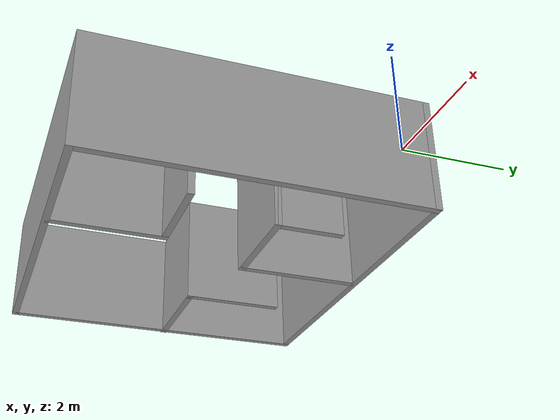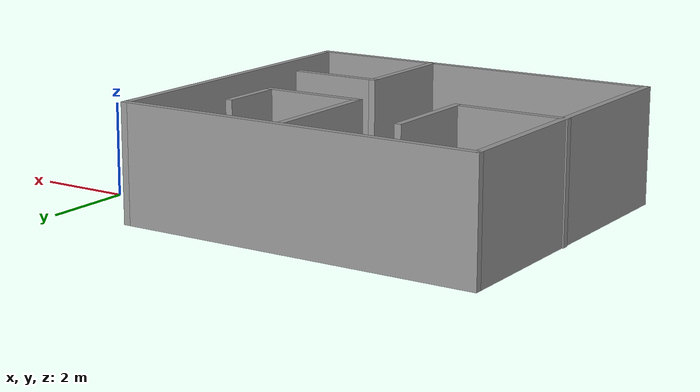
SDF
<?xml version='1.0'?>
<sdf version='1.7'>
  <model name='room'>
    <pose>-4.84076 -1.84671 0 0 -0 0</pose>
    <link name='Wall_0'>
      <collision name='Wall_0_Collision'>
        <geometry>
          <box>
            <size>7.25 0.15 2.5</size>
          </box>
        </geometry>
        <pose>0 0 1.25 0 -0 0</pose>
      </collision>
      <visual name='Wall_0_Visual'>
        <pose>0 0 1.25 0 -0 0</pose>
        <geometry>
          <box>
            <size>7.25 0.15 2.5</size>
          </box>
        </geometry>
        <material>
          <script>
            <uri>file://media/materials/scripts/gazebo.material</uri>
            <name>Gazebo/Grey</name>
          </script>
          <ambient>1 1 1 1</ambient>
        </material>
        <meta>
          <layer>0</layer>
        </meta>
      </visual>
      <pose>-4.73517 0 0 0 -0 -1.5708</pose>
    </link>
    <link name='Wall_1'>
      <collision name='Wall_1_Collision'>
        <geometry>
          <box>
            <size>8 0.15 2.5</size>
          </box>
        </geometry>
        <pose>0 0 1.25 0 -0 0</pose>
      </collision>
      <visual name='Wall_1_Visual'>
        <pose>0 0 1.25 0 -0 0</pose>
        <geometry>
          <box>
            <size>8 0.15 2.5</size>
          </box>
        </geometry>
        <material>
          <script>
            <uri>file://media/materials/scripts/gazebo.material</uri>
            <name>Gazebo/Grey</name>
          </script>
          <ambient>1 1 1 1</ambient>
        </material>
        <meta>
          <layer>0</layer>
        </meta>
      </visual>
      <pose>-0.81017 -3.55 0 0 -0 0</pose>
    </link>
    <link name='Wall_11'>
      <collision name='Wall_11_Collision'>
        <geometry>
          <box>
            <size>2.75 0.15 2.5</size>
          </box>
        </geometry>
        <pose>0 0 1.25 0 -0 0</pose>
      </collision>
      <visual name='Wall_11_Visual'>
        <pose>0 0 1.25 0 -0 0</pose>
        <geometry>
          <box>
            <size>2.75 0.15 2.5</size>
          </box>
        </geometry>
        <material>
          <script>
            <uri>file://media/materials/scripts/gazebo.material</uri>
            <name>Gazebo/Grey</name>
          </script>
          <ambient>1 1 1 1</ambient>
        </material>
        <meta>
          <layer>0</layer>
        </meta>
      </visual>
      <pose>-0.544308 2.15823 0 0 -0 -1.5708</pose>
    </link>
    <link name='Wall_12'>
      <collision name='Wall_12_Collision'>
        <geometry>
          <box>
            <size>2.25 0.15 2.5</size>
          </box>
        </geometry>
        <pose>0 0 1.25 0 -0 0</pose>
      </collision>
      <visual name='Wall_12_Visual'>
        <pose>0 0 1.25 0 -0 0</pose>
        <geometry>
          <box>
            <size>2.25 0.15 2.5</size>
          </box>
        </geometry>
        <material>
          <script>
            <uri>file://media/materials/scripts/gazebo.material</uri>
            <name>Gazebo/Grey</name>
          </script>
          <ambient>1 1 1 1</ambient>
        </material>
        <meta>
          <layer>0</layer>
        </meta>
      </visual>
      <pose>0.505692 0.858229 0 0 -0 0</pose>
    </link>
    <link name='Wall_13'>
      <collision name='Wall_13_Collision'>
        <geometry>
          <box>
            <size>1.5 0.15 2.5</size>
          </box>
        </geometry>
        <pose>0 0 1.25 0 -0 0</pose>
      </collision>
      <visual name='Wall_13_Visual'>
        <pose>0 0 1.25 0 -0 0</pose>
        <geometry>
          <box>
            <size>1.5 0.15 2.5</size>
          </box>
        </geometry>
        <material>
          <script>
            <uri>file://media/materials/scripts/gazebo.material</uri>
            <name>Gazebo/Grey</name>
          </script>
          <ambient>1 1 1 1</ambient>
        </material>
        <meta>
          <layer>0</layer>
        </meta>
      </visual>
      <pose>1.55569 1.53323 0 0 -0 1.5708</pose>
    </link>
    <link name='Wall_2'>
      <collision name='Wall_2_Collision'>
        <geometry>
          <box>
            <size>7.25 0.15 2.5</size>
          </box>
        </geometry>
        <pose>0 0 1.25 0 -0 0</pose>
      </collision>
      <visual name='Wall_2_Visual'>
        <pose>0 0 1.25 0 -0 0</pose>
        <geometry>
          <box>
            <size>7.25 0.15 2.5</size>
          </box>
        </geometry>
        <material>
          <script>
            <uri>file://media/materials/scripts/gazebo.material</uri>
            <name>Gazebo/Grey</name>
          </script>
          <ambient>1 1 1 1</ambient>
        </material>
        <meta>
          <layer>0</layer>
        </meta>
      </visual>
      <pose>3.11483 0 0 0 -0 1.5708</pose>
    </link>
    <link name='Wall_3'>
      <collision name='Wall_3_Collision'>
        <geometry>
          <box>
            <size>8 0.15 2.5</size>
          </box>
        </geometry>
        <pose>0 0 1.25 0 -0 0</pose>
      </collision>
      <visual name='Wall_3_Visual'>
        <pose>0 0 1.25 0 -0 0</pose>
        <geometry>
          <box>
            <size>8 0.15 2.5</size>
          </box>
        </geometry>
        <material>
          <script>
            <uri>file://media/materials/scripts/gazebo.material</uri>
            <name>Gazebo/Grey</name>
          </script>
          <ambient>1 1 1 1</ambient>
        </material>
        <meta>
          <layer>0</layer>
        </meta>
      </visual>
      <pose>-0.81017 3.55 0 0 -0 3.14159</pose>
    </link>
    <link name='Wall_5'>
      <collision name='Wall_5_Collision'>
        <geometry>
          <box>
            <size>2.5 0.15 2.5</size>
          </box>
        </geometry>
        <pose>0 0 1.25 0 -0 0</pose>
      </collision>
      <visual name='Wall_5_Visual'>
        <pose>0 0 1.25 0 -0 0</pose>
        <geometry>
          <box>
            <size>2.5 0.15 2.5</size>
          </box>
        </geometry>
        <material>
          <script>
            <uri>file://media/materials/scripts/gazebo.material</uri>
            <name>Gazebo/Grey</name>
          </script>
          <ambient>1 1 1 1</ambient>
        </material>
        <meta>
          <layer>0</layer>
        </meta>
      </visual>
      <pose>-3.59076 0.215665 0 0 -0 0</pose>
    </link>
    <link name='Wall_6'>
      <collision name='Wall_6_Collision'>
        <geometry>
          <box>
            <size>2.25 0.15 2.5</size>
          </box>
        </geometry>
        <pose>0 0 1.25 0 -0 0</pose>
      </collision>
      <visual name='Wall_6_Visual'>
        <pose>0 0 1.25 0 -0 0</pose>
        <geometry>
          <box>
            <size>2.25 0.15 2.5</size>
          </box>
        </geometry>
        <material>
          <script>
            <uri>file://media/materials/scripts/gazebo.material</uri>
            <name>Gazebo/Grey</name>
          </script>
          <ambient>1 1 1 1</ambient>
        </material>
        <meta>
          <layer>0</layer>
        </meta>
      </visual>
      <pose>-2.41576 1.26567 0 0 -0 1.5708</pose>
    </link>
    <link name='Wall_8'>
      <collision name='Wall_8_Collision'>
        <geometry>
          <box>
            <size>2.5 0.15 2.5</size>
          </box>
        </geometry>
        <pose>0 0 1.25 0 -0 0</pose>
      </collision>
      <visual name='Wall_8_Visual'>
        <pose>0 0 1.25 0 -0 0</pose>
        <geometry>
          <box>
            <size>2.5 0.15 2.5</size>
          </box>
        </geometry>
        <material>
          <script>
            <uri>file://media/materials/scripts/gazebo.material</uri>
            <name>Gazebo/Grey</name>
          </script>
          <ambient>1 1 1 1</ambient>
        </material>
        <meta>
          <layer>0</layer>
        </meta>
      </visual>
      <pose>0.342808 -2.31075 0 0 -0 1.5708</pose>
    </link>
    <link name='Wall_9'>
      <collision name='Wall_9_Collision'>
        <geometry>
          <box>
            <size>2 0.15 2.5</size>
          </box>
        </geometry>
        <pose>0 0 1.25 0 -0 0</pose>
      </collision>
      <visual name='Wall_9_Visual'>
        <pose>0 0 1.25 0 -0 0</pose>
        <geometry>
          <box>
            <size>2 0.15 2.5</size>
          </box>
        </geometry>
        <material>
          <script>
            <uri>file://media/materials/scripts/gazebo.material</uri>
            <name>Gazebo/Grey</name>
          </script>
          <ambient>1 1 1 1</ambient>
        </material>
        <meta>
          <layer>0</layer>
        </meta>
      </visual>
      <pose>1.26781 -1.13575 0 0 -0 0</pose>
    </link>
    <static>1</static>
  </model>
</sdf>
